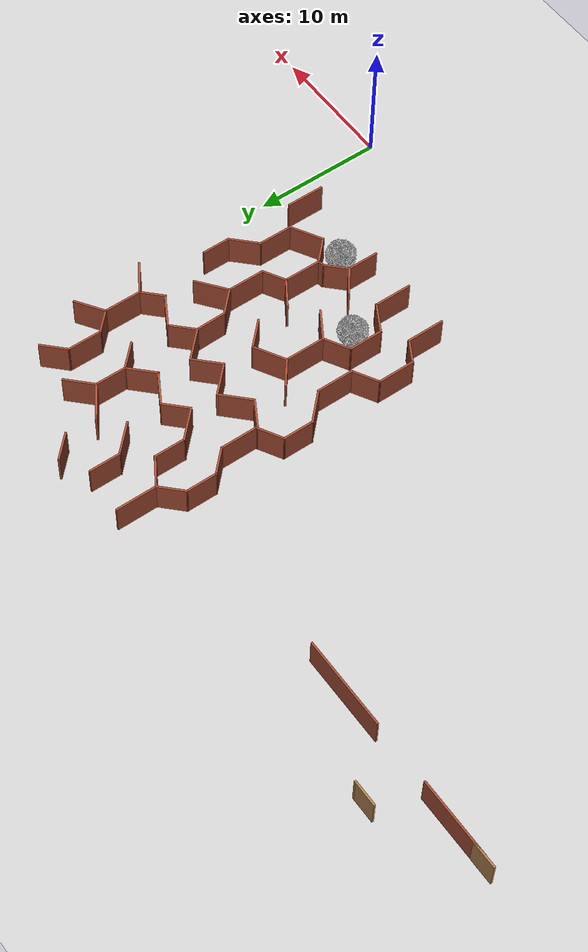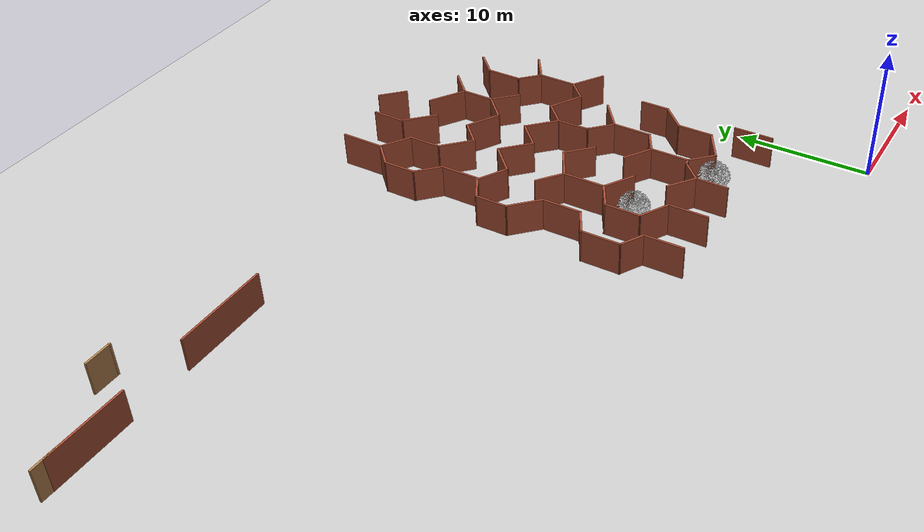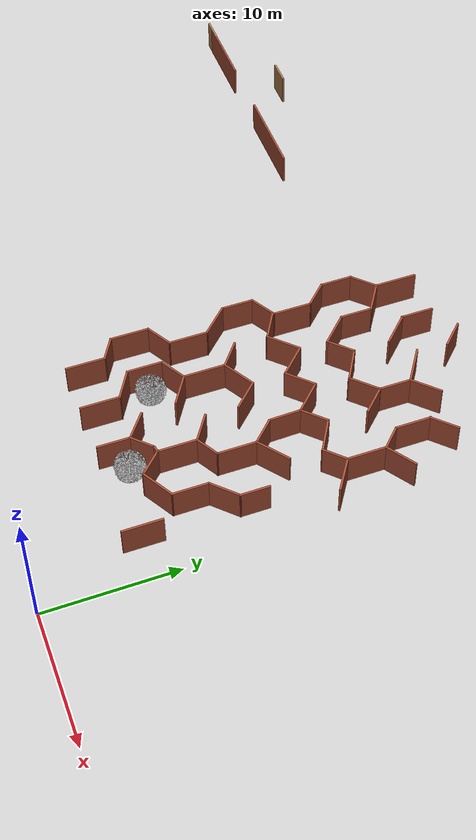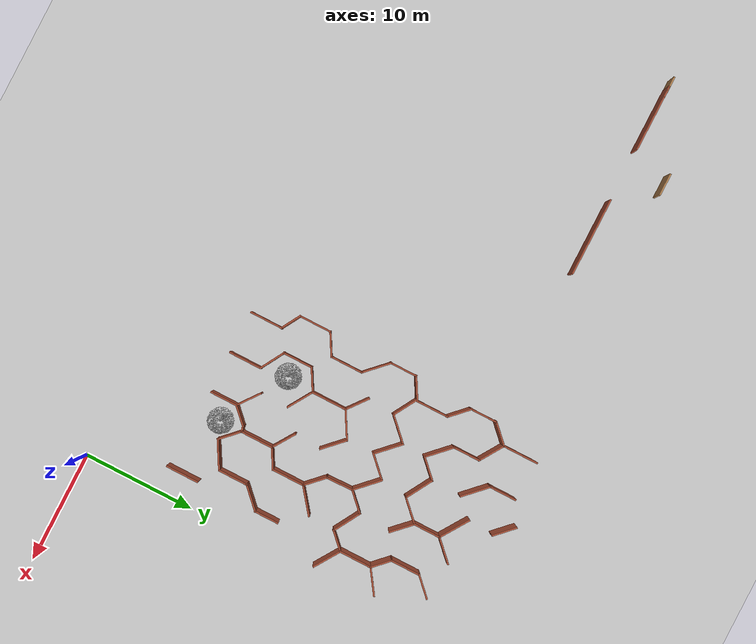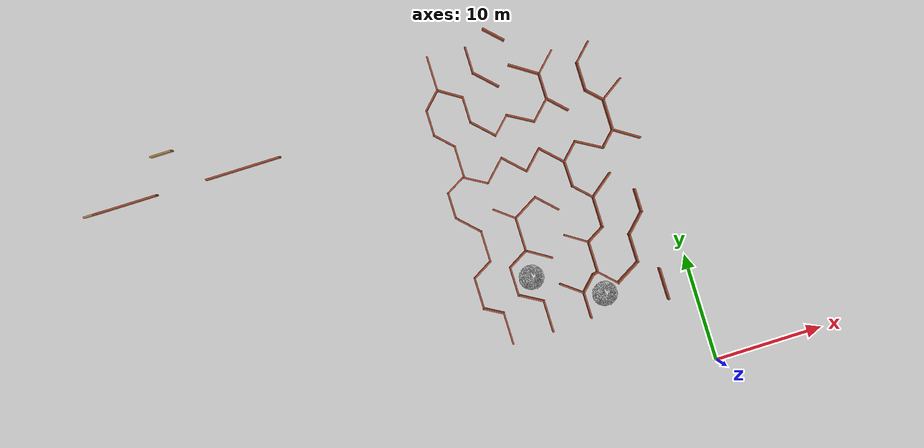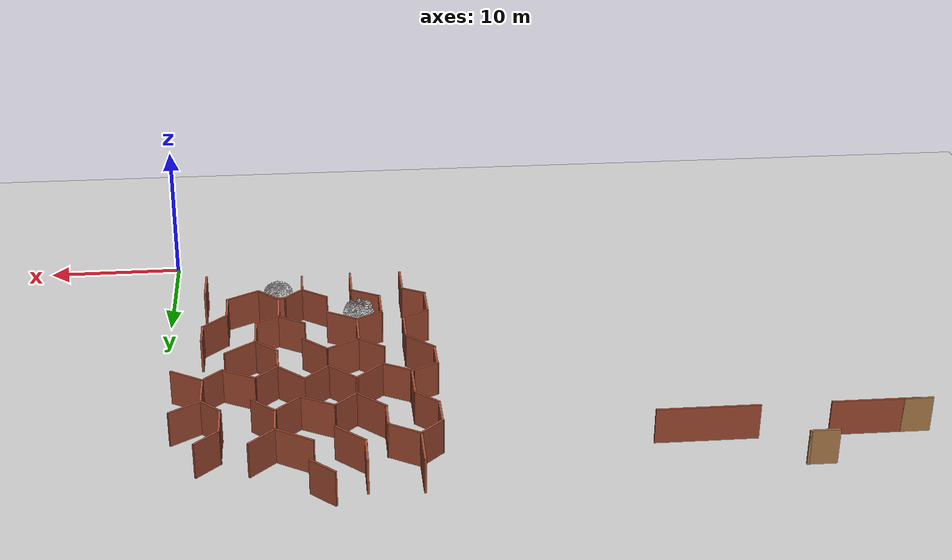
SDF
<sdf version="1.6">
 <world name="default">
  <model name="maze_rect_3">
   <pose>4e-06 -9.9e-05 0 0 -0 1.57001</pose>
   <link name="Wall_100">
    <collision name="Wall_100_Collision">
     <geometry><box><size>3 0.15 2.5</size></box></geometry>
     <pose>0 0 1.25 0 -0 0</pose>
    </collision>
    <visual name="Wall_100_Visual">
     <pose>0 0 1.25 0 -0 0</pose>
     <geometry><box><size>3 0.15 2.5</size></box></geometry>
     <material>
      <script><uri>file://media/materials/scripts/gazebo.material</uri><name>Gazebo/Bricks</name></script>
      <ambient>1 1 1 1</ambient>
     </material>
     <meta><layer>0</layer></meta>
    </visual>
    <pose>8.41531 17.2964 0 0 -0 0</pose>
   </link>
   <link name="Wall_101">
    <collision name="Wall_101_Collision">
     <geometry><box><size>2 0.15 2.5</size></box></geometry>
     <pose>0 0 1.25 0 -0 0</pose>
    </collision>
    <visual name="Wall_101_Visual">
     <pose>0 0 1.25 0 -0 0</pose>
     <geometry><box><size>2 0.15 2.5</size></box></geometry>
     <material>
      <script><uri>file://media/materials/scripts/gazebo.material</uri><name>Gazebo/Bricks</name></script>
      <ambient>1 1 1 1</ambient>
     </material>
     <meta><layer>0</layer></meta>
    </visual>
    <pose>10.3028 18.0975 0 0 -0 1.0472</pose>
   </link>
   <link name="Wall_102">
    <collision name="Wall_102_Collision">
     <geometry><box><size>3 0.15 2.5</size></box></geometry>
     <pose>0 0 1.25 0 -0 0</pose>
    </collision>
    <visual name="Wall_102_Visual">
     <pose>0 0 1.25 0 -0 0</pose>
     <geometry><box><size>3 0.15 2.5</size></box></geometry>
     <material>
      <script><uri>file://media/materials/scripts/gazebo.material</uri><name>Gazebo/Bricks</name></script>
      <ambient>1 1 1 1</ambient>
     </material>
     <meta><layer>0</layer></meta>
    </visual>
    <pose>12.1903 18.8985 0 0 -0 0</pose>
   </link>
   <link name="Wall_103">
    <collision name="Wall_103_Collision">
     <geometry><box><size>2.25 0.15 2.5</size></box></geometry>
     <pose>0 0 1.25 0 -0 0</pose>
    </collision>
    <visual name="Wall_103_Visual">
     <pose>0 0 1.25 0 -0 0</pose>
     <geometry><box><size>2.25 0.15 2.5</size></box></geometry>
     <material>
      <script><uri>file://media/materials/scripts/gazebo.material</uri><name>Gazebo/Bricks</name></script>
      <ambient>1 1 1 1</ambient>
     </material>
     <meta><layer>0</layer></meta>
    </visual>
    <pose>14.1403 17.9892 0 0 -0 -1.0472</pose>
   </link>
   <link name="Wall_104">
    <collision name="Wall_104_Collision">
     <geometry><box><size>3 0.15 2.5</size></box></geometry>
     <pose>0 0 1.25 0 -0 0</pose>
    </collision>
    <visual name="Wall_104_Visual">
     <pose>0 0 1.25 0 -0 0</pose>
     <geometry><box><size>3 0.15 2.5</size></box></geometry>
     <material>
      <script><uri>file://media/materials/scripts/gazebo.material</uri><name>Gazebo/Bricks</name></script>
      <ambient>1 1 1 1</ambient>
     </material>
     <meta><layer>0</layer></meta>
    </visual>
    <pose>16.0903 17.0799 0 0 -0 0</pose>
   </link>
   <link name="Wall_105">
    <collision name="Wall_105_Collision">
     <geometry><box><size>2.75 0.15 2.5</size></box></geometry>
     <pose>0 0 1.25 0 -0 0</pose>
    </collision>
    <visual name="Wall_105_Visual">
     <pose>0 0 1.25 0 -0 0</pose>
     <geometry><box><size>2.75 0.15 2.5</size></box></geometry>
     <material>
      <script><uri>file://media/materials/scripts/gazebo.material</uri><name>Gazebo/Bricks</name></script>
      <ambient>1 1 1 1</ambient>
     </material>
     <meta><layer>0</layer></meta>
    </visual>
    <pose>18.4346 17.9991 0 0 -0 0.785398</pose>
   </link>
   <link name="Wall_106">
    <collision name="Wall_106_Collision">
     <geometry><box><size>2.5 0.15 2.5</size></box></geometry>
     <pose>0 0 1.25 0 -0 0</pose>
    </collision>
    <visual name="Wall_106_Visual">
     <pose>0 0 1.25 0 -0 0</pose>
     <geometry><box><size>2.5 0.15 2.5</size></box></geometry>
     <material>
      <script><uri>file://media/materials/scripts/gazebo.material</uri><name>Gazebo/Bricks</name></script>
      <ambient>1 1 1 1</ambient>
     </material>
     <meta><layer>0</layer></meta>
    </visual>
    <pose>20.5288 18.9183 0 0 -0 0</pose>
   </link>
   <link name="Wall_107">
    <collision name="Wall_107_Collision">
     <geometry><box><size>2.25 0.15 2.5</size></box></geometry>
     <pose>0 0 1.25 0 -0 0</pose>
    </collision>
    <visual name="Wall_107_Visual">
     <pose>0 0 1.25 0 -0 0</pose>
     <geometry><box><size>2.25 0.15 2.5</size></box></geometry>
     <material>
      <script><uri>file://media/materials/scripts/gazebo.material</uri><name>Gazebo/Bricks</name></script>
      <ambient>1 1 1 1</ambient>
     </material>
     <meta><layer>0</layer></meta>
    </visual>
    <pose>22.2288 18.009 0 0 -0 -1.0472</pose>
   </link>
   <link name="Wall_108">
    <collision name="Wall_108_Collision">
     <geometry><box><size>3 0.15 2.5</size></box></geometry>
     <pose>0 0 1.25 0 -0 0</pose>
    </collision>
    <visual name="Wall_108_Visual">
     <pose>0 0 1.25 0 -0 0</pose>
     <geometry><box><size>3 0.15 2.5</size></box></geometry>
     <material>
      <script><uri>file://media/materials/scripts/gazebo.material</uri><name>Gazebo/Bricks</name></script>
      <ambient>1 1 1 1</ambient>
     </material>
     <meta><layer>0</layer></meta>
    </visual>
    <pose>24.1788 17.0997 0 0 -0 0</pose>
   </link>
   <link name="Wall_109">
    <collision name="Wall_109_Collision">
     <geometry><box><size>2.25 0.15 2.5</size></box></geometry>
     <pose>0 0 1.25 0 -0 0</pose>
    </collision>
    <visual name="Wall_109_Visual">
     <pose>0 0 1.25 0 -0 0</pose>
     <geometry><box><size>2.25 0.15 2.5</size></box></geometry>
     <material>
      <script><uri>file://media/materials/scripts/gazebo.material</uri><name>Gazebo/Bricks</name></script>
      <ambient>1 1 1 1</ambient>
     </material>
     <meta><layer>0</layer></meta>
    </visual>
    <pose>26.3463 17.8422 0 0 -0 0.785398</pose>
   </link>
   <link name="Wall_110">
    <collision name="Wall_110_Collision">
     <geometry><box><size>2.5 0.15 2.5</size></box></geometry>
     <pose>0 0 1.25 0 -0 0</pose>
    </collision>
    <visual name="Wall_110_Visual">
     <pose>0 0 1.25 0 -0 0</pose>
     <geometry><box><size>2.5 0.15 2.5</size></box></geometry>
     <material>
      <script><uri>file://media/materials/scripts/gazebo.material</uri><name>Gazebo/Bricks</name></script>
      <ambient>1 1 1 1</ambient>
     </material>
     <meta><layer>0</layer></meta>
    </visual>
    <pose>28.2637 18.5846 0 0 -0 0</pose>
   </link>
   <link name="Wall_111">
    <collision name="Wall_111_Collision">
     <geometry><box><size>2.25 0.15 2.5</size></box></geometry>
     <pose>0 0 1.25 0 -0 0</pose>
    </collision>
    <visual name="Wall_111_Visual">
     <pose>0 0 1.25 0 -0 0</pose>
     <geometry><box><size>2.25 0.15 2.5</size></box></geometry>
     <material>
      <script><uri>file://media/materials/scripts/gazebo.material</uri><name>Gazebo/Bricks</name></script>
      <ambient>1 1 1 1</ambient>
     </material>
     <meta><layer>0</layer></meta>
    </visual>
    <pose>30.1812 17.8422 0 0 -0 -0.785398</pose>
   </link>
   <link name="Wall_112">
    <collision name="Wall_112_Collision">
     <geometry><box><size>3.25 0.15 2.5</size></box></geometry>
     <pose>0 0 1.25 0 -0 0</pose>
    </collision>
    <visual name="Wall_112_Visual">
     <pose>0 0 1.25 0 -0 0</pose>
     <geometry><box><size>3.25 0.15 2.5</size></box></geometry>
     <material>
      <script><uri>file://media/materials/scripts/gazebo.material</uri><name>Gazebo/Bricks</name></script>
      <ambient>1 1 1 1</ambient>
     </material>
     <meta><layer>0</layer></meta>
    </visual>
    <pose>32.4736 17.0997 0 0 -0 0</pose>
   </link>
   <link name="Wall_324">
    <collision name="Wall_324_Collision">
     <geometry><box><size>2.5 0.15 2.5</size></box></geometry>
     <pose>0 0 1.25 0 -0 0</pose>
    </collision>
    <visual name="Wall_324_Visual">
     <pose>0 0 1.25 0 -0 0</pose>
     <geometry><box><size>2.5 0.15 2.5</size></box></geometry>
     <material>
      <script><uri>file://media/materials/scripts/gazebo.material</uri><name>Gazebo/Bricks</name></script>
      <ambient>1 1 1 1</ambient>
     </material>
     <meta><layer>0</layer></meta>
    </visual>
    <pose>30.4716 7.01358 0 0 -0 2.35619</pose>
   </link>
   <link name="Wall_325">
    <collision name="Wall_325_Collision">
     <geometry><box><size>2.5 0.15 2.5</size></box></geometry>
     <pose>0 0 1.25 0 -0 0</pose>
    </collision>
    <visual name="Wall_325_Visual">
     <pose>0 0 1.25 0 -0 0</pose>
     <geometry><box><size>2.5 0.15 2.5</size></box></geometry>
     <material>
      <script><uri>file://media/materials/scripts/gazebo.material</uri><name>Gazebo/Bricks</name></script>
      <ambient>1 1 1 1</ambient>
     </material>
     <meta><layer>0</layer></meta>
    </visual>
    <pose>28.4657 7.84443 0 0 -0 3.14159</pose>
   </link>
   <link name="Wall_326">
    <collision name="Wall_326_Collision">
     <geometry><box><size>2.5 0.15 2.5</size></box></geometry>
     <pose>0 0 1.25 0 -0 0</pose>
    </collision>
    <visual name="Wall_326_Visual">
     <pose>0 0 1.25 0 -0 0</pose>
     <geometry><box><size>2.5 0.15 2.5</size></box></geometry>
     <material>
      <script><uri>file://media/materials/scripts/gazebo.material</uri><name>Gazebo/Bricks</name></script>
      <ambient>1 1 1 1</ambient>
     </material>
     <meta><layer>0</layer></meta>
    </visual>
    <pose>26.4599 8.67528 0 0 -0 2.35619</pose>
   </link>
   <link name="Wall_327">
    <collision name="Wall_327_Collision">
     <geometry><box><size>2.75 0.15 2.5</size></box></geometry>
     <pose>0 0 1.25 0 -0 0</pose>
    </collision>
    <visual name="Wall_327_Visual">
     <pose>0 0 1.25 0 -0 0</pose>
     <geometry><box><size>2.75 0.15 2.5</size></box></geometry>
     <material>
      <script><uri>file://media/materials/scripts/gazebo.material</uri><name>Gazebo/Bricks</name></script>
      <ambient>1 1 1 1</ambient>
     </material>
     <meta><layer>0</layer></meta>
    </visual>
    <pose>26.279 10.632 0 0 -0 1.0472</pose>
   </link>
   <link name="Wall_328">
    <collision name="Wall_328_Collision">
     <geometry><box><size>2.25 0.15 2.5</size></box></geometry>
     <pose>0 0 1.25 0 -0 0</pose>
    </collision>
    <visual name="Wall_328_Visual">
     <pose>0 0 1.25 0 -0 0</pose>
     <geometry><box><size>2.25 0.15 2.5</size></box></geometry>
     <material>
      <script><uri>file://media/materials/scripts/gazebo.material</uri><name>Gazebo/Bricks</name></script>
      <ambient>1 1 1 1</ambient>
     </material>
     <meta><layer>0</layer></meta>
    </visual>
    <pose>26.1866 12.5003 0 0 -0 2.35619</pose>
   </link>
   <link name="Wall_329">
    <collision name="Wall_329_Collision">
     <geometry><box><size>2.75 0.15 2.5</size></box></geometry>
     <pose>0 0 1.25 0 -0 0</pose>
    </collision>
    <visual name="Wall_329_Visual">
     <pose>0 0 1.25 0 -0 0</pose>
     <geometry><box><size>2.75 0.15 2.5</size></box></geometry>
     <material>
      <script><uri>file://media/materials/scripts/gazebo.material</uri><name>Gazebo/Bricks</name></script>
      <ambient>1 1 1 1</ambient>
     </material>
     <meta><layer>0</layer></meta>
    </visual>
    <pose>26.3633 14.162 0 0 -0 0.785398</pose>
   </link>
   <link name="Wall_330">
    <collision name="Wall_330_Collision">
     <geometry><box><size>2.5 0.15 2.5</size></box></geometry>
     <pose>0 0 1.25 0 -0 0</pose>
    </collision>
    <visual name="Wall_330_Visual">
     <pose>0 0 1.25 0 -0 0</pose>
     <geometry><box><size>2.5 0.15 2.5</size></box></geometry>
     <material>
      <script><uri>file://media/materials/scripts/gazebo.material</uri><name>Gazebo/Bricks</name></script>
      <ambient>1 1 1 1</ambient>
     </material>
     <meta><layer>0</layer></meta>
    </visual>
    <pose>28.4576 15.0812 0 0 -0 0</pose>
   </link>
   <link name="Wall_331">
    <collision name="Wall_331_Collision">
     <geometry><box><size>2.54607 0.15 2.5</size></box></geometry>
     <pose>0 0 1.25 0 -0 0</pose>
    </collision>
    <visual name="Wall_331_Visual">
     <pose>0 0 1.25 0 -0 0</pose>
     <geometry><box><size>2.54607 0.15 2.5</size></box></geometry>
     <material>
      <script><uri>file://media/materials/scripts/gazebo.material</uri><name>Gazebo/Bricks</name></script>
      <ambient>1 1 1 1</ambient>
     </material>
     <meta><layer>0</layer></meta>
    </visual>
    <pose>30.2781 16.0904 0 0 -0 1.00176</pose>
   </link>
   <link name="Wall_333">
    <collision name="Wall_333_Collision">
     <geometry><box><size>3.00629 0.15 2.5</size></box></geometry>
     <pose>0 0 1.25 0 -0 0</pose>
    </collision>
    <visual name="Wall_333_Visual">
     <pose>0 0 1.25 0 -0 0</pose>
     <geometry><box><size>3.00629 0.15 2.5</size></box></geometry>
     <material>
      <script><uri>file://media/materials/scripts/gazebo.material</uri><name>Gazebo/Bricks</name></script>
      <ambient>1 1 1 1</ambient>
     </material>
     <meta><layer>0</layer></meta>
    </visual>
    <pose>30.4256 9.03758 0 0 -0 -2.15263</pose>
   </link>
   <link name="Wall_335">
    <collision name="Wall_335_Collision">
     <geometry><box><size>2.75 0.15 2.5</size></box></geometry>
     <pose>0 0 1.25 0 -0 0</pose>
    </collision>
    <visual name="Wall_335_Visual">
     <pose>0 0 1.25 0 -0 0</pose>
     <geometry><box><size>2.75 0.15 2.5</size></box></geometry>
     <material>
      <script><uri>file://media/materials/scripts/gazebo.material</uri><name>Gazebo/Bricks</name></script>
      <ambient>1 1 1 1</ambient>
     </material>
     <meta><layer>0</layer></meta>
    </visual>
    <pose>30.5657 12.622 0 0 -0 0.785398</pose>
   </link>
   <link name="Wall_336">
    <collision name="Wall_336_Collision">
     <geometry><box><size>2.5 0.15 2.5</size></box></geometry>
     <pose>0 0 1.25 0 -0 0</pose>
    </collision>
    <visual name="Wall_336_Visual">
     <pose>0 0 1.25 0 -0 0</pose>
     <geometry><box><size>2.5 0.15 2.5</size></box></geometry>
     <material>
      <script><uri>file://media/materials/scripts/gazebo.material</uri><name>Gazebo/Bricks</name></script>
      <ambient>1 1 1 1</ambient>
     </material>
     <meta><layer>0</layer></meta>
    </visual>
    <pose>32.6599 13.5412 0 0 -0 0</pose>
   </link>
   <link name="Wall_338">
    <collision name="Wall_338_Collision">
     <geometry><box><size>2.25 0.15 2.5</size></box></geometry>
     <pose>0 0 1.25 0 -0 0</pose>
    </collision>
    <visual name="Wall_338_Visual">
     <pose>0 0 1.25 0 -0 0</pose>
     <geometry><box><size>2.25 0.15 2.5</size></box></geometry>
     <material>
      <script><uri>file://media/materials/scripts/gazebo.material</uri><name>Gazebo/Bricks</name></script>
      <ambient>1 1 1 1</ambient>
     </material>
     <meta><layer>0</layer></meta>
    </visual>
    <pose>34.2674 10.7636 0 0 -0 -2.35619</pose>
   </link>
   <link name="Wall_342">
    <collision name="Wall_342_Collision">
     <geometry><box><size>2.25 0.15 2.5</size></box></geometry>
     <pose>0 0 1.25 0 -0 0</pose>
    </collision>
    <visual name="Wall_342_Visual">
     <pose>0 0 1.25 0 -0 0</pose>
     <geometry><box><size>2.25 0.15 2.5</size></box></geometry>
     <material>
      <script><uri>file://media/materials/scripts/gazebo.material</uri><name>Gazebo/Bricks</name></script>
      <ambient>1 1 1 1</ambient>
     </material>
     <meta><layer>0</layer></meta>
    </visual>
    <pose>30.33 3.52119 0 0 -0 2.35619</pose>
   </link>
   <link name="Wall_343">
    <collision name="Wall_343_Collision">
     <geometry><box><size>2.75 0.15 2.5</size></box></geometry>
     <pose>0 0 1.25 0 -0 0</pose>
    </collision>
    <visual name="Wall_343_Visual">
     <pose>0 0 1.25 0 -0 0</pose>
     <geometry><box><size>2.75 0.15 2.5</size></box></geometry>
     <material>
      <script><uri>file://media/materials/scripts/gazebo.material</uri><name>Gazebo/Bricks</name></script>
      <ambient>1 1 1 1</ambient>
     </material>
     <meta><layer>0</layer></meta>
    </visual>
    <pose>28.2875 4.26365 0 0 -0 3.14159</pose>
   </link>
   <link name="Wall_344">
    <collision name="Wall_344_Collision">
     <geometry><box><size>2 0.15 2.5</size></box></geometry>
     <pose>0 0 1.25 0 -0 0</pose>
    </collision>
    <visual name="Wall_344_Visual">
     <pose>0 0 1.25 0 -0 0</pose>
     <geometry><box><size>2 0.15 2.5</size></box></geometry>
     <material>
      <script><uri>file://media/materials/scripts/gazebo.material</uri><name>Gazebo/Bricks</name></script>
      <ambient>1 1 1 1</ambient>
     </material>
     <meta><layer>0</layer></meta>
    </visual>
    <pose>26.3334 3.60958 0 0 -0 -2.35619</pose>
   </link>
   <link name="Wall_345">
    <collision name="Wall_345_Collision">
     <geometry><box><size>3 0.15 2.5</size></box></geometry>
     <pose>0 0 1.25 0 -0 0</pose>
    </collision>
    <visual name="Wall_345_Visual">
     <pose>0 0 1.25 0 -0 0</pose>
     <geometry><box><size>3 0.15 2.5</size></box></geometry>
     <material>
      <script><uri>file://media/materials/scripts/gazebo.material</uri><name>Gazebo/Bricks</name></script>
      <ambient>1 1 1 1</ambient>
     </material>
     <meta><layer>0</layer></meta>
    </visual>
    <pose>24.2544 2.95551 0 0 -0 3.14159</pose>
   </link>
   <link name="Wall_346">
    <collision name="Wall_346_Collision">
     <geometry><box><size>2 0.15 2.5</size></box></geometry>
     <pose>0 0 1.25 0 -0 0</pose>
    </collision>
    <visual name="Wall_346_Visual">
     <pose>0 0 1.25 0 -0 0</pose>
     <geometry><box><size>2 0.15 2.5</size></box></geometry>
     <material>
      <script><uri>file://media/materials/scripts/gazebo.material</uri><name>Gazebo/Bricks</name></script>
      <ambient>1 1 1 1</ambient>
     </material>
     <meta><layer>0</layer></meta>
    </visual>
    <pose>22.1753 3.60958 0 0 -0 2.35619</pose>
   </link>
   <link name="Wall_347">
    <collision name="Wall_347_Collision">
     <geometry><box><size>2.75 0.15 2.5</size></box></geometry>
     <pose>0 0 1.25 0 -0 0</pose>
    </collision>
    <visual name="Wall_347_Visual">
     <pose>0 0 1.25 0 -0 0</pose>
     <geometry><box><size>2.75 0.15 2.5</size></box></geometry>
     <material>
      <script><uri>file://media/materials/scripts/gazebo.material</uri><name>Gazebo/Bricks</name></script>
      <ambient>1 1 1 1</ambient>
     </material>
     <meta><layer>0</layer></meta>
    </visual>
    <pose>22.1712 5.38949 0 0 -0 1.0472</pose>
   </link>
   <link name="Wall_348">
    <collision name="Wall_348_Collision">
     <geometry><box><size>2.25 0.15 2.5</size></box></geometry>
     <pose>0 0 1.25 0 -0 0</pose>
    </collision>
    <visual name="Wall_348_Visual">
     <pose>0 0 1.25 0 -0 0</pose>
     <geometry><box><size>2.25 0.15 2.5</size></box></geometry>
     <material>
      <script><uri>file://media/materials/scripts/gazebo.material</uri><name>Gazebo/Bricks</name></script>
      <ambient>1 1 1 1</ambient>
     </material>
     <meta><layer>0</layer></meta>
    </visual>
    <pose>22.0787 7.25778 0 0 -0 2.35619</pose>
   </link>
   <link name="Wall_349">
    <collision name="Wall_349_Collision">
     <geometry><box><size>2.75 0.15 2.5</size></box></geometry>
     <pose>0 0 1.25 0 -0 0</pose>
    </collision>
    <visual name="Wall_349_Visual">
     <pose>0 0 1.25 0 -0 0</pose>
     <geometry><box><size>2.75 0.15 2.5</size></box></geometry>
     <material>
      <script><uri>file://media/materials/scripts/gazebo.material</uri><name>Gazebo/Bricks</name></script>
      <ambient>1 1 1 1</ambient>
     </material>
     <meta><layer>0</layer></meta>
    </visual>
    <pose>22.2555 8.91948 0 0 -0 0.785398</pose>
   </link>
   <link name="Wall_350">
    <collision name="Wall_350_Collision">
     <geometry><box><size>2.5 0.15 2.5</size></box></geometry>
     <pose>0 0 1.25 0 -0 0</pose>
    </collision>
    <visual name="Wall_350_Visual">
     <pose>0 0 1.25 0 -0 0</pose>
     <geometry><box><size>2.5 0.15 2.5</size></box></geometry>
     <material>
      <script><uri>file://media/materials/scripts/gazebo.material</uri><name>Gazebo/Bricks</name></script>
      <ambient>1 1 1 1</ambient>
     </material>
     <meta><layer>0</layer></meta>
    </visual>
    <pose>22.3439 10.6696 0 0 -0 2.35619</pose>
   </link>
   <link name="Wall_351">
    <collision name="Wall_351_Collision">
     <geometry><box><size>2.75 0.15 2.5</size></box></geometry>
     <pose>0 0 1.25 0 -0 0</pose>
    </collision>
    <visual name="Wall_351_Visual">
     <pose>0 0 1.25 0 -0 0</pose>
     <geometry><box><size>2.75 0.15 2.5</size></box></geometry>
     <material>
      <script><uri>file://media/materials/scripts/gazebo.material</uri><name>Gazebo/Bricks</name></script>
      <ambient>1 1 1 1</ambient>
     </material>
     <meta><layer>0</layer></meta>
    </visual>
    <pose>22.4323 12.4197 0 0 -0 0.785398</pose>
   </link>
   <link name="Wall_352">
    <collision name="Wall_352_Collision">
     <geometry><box><size>2.75 0.15 2.5</size></box></geometry>
     <pose>0 0 1.25 0 -0 0</pose>
    </collision>
    <visual name="Wall_352_Visual">
     <pose>0 0 1.25 0 -0 0</pose>
     <geometry><box><size>2.75 0.15 2.5</size></box></geometry>
     <material>
      <script><uri>file://media/materials/scripts/gazebo.material</uri><name>Gazebo/Bricks</name></script>
      <ambient>1 1 1 1</ambient>
     </material>
     <meta><layer>0</layer></meta>
    </visual>
    <pose>22.4323 14.2581 0 0 -0 2.35619</pose>
   </link>
   <link name="Wall_354">
    <collision name="Wall_354_Collision">
     <geometry><box><size>2.5 0.15 2.5</size></box></geometry>
     <pose>0 0 1.25 0 -0 0</pose>
    </collision>
    <visual name="Wall_354_Visual">
     <pose>0 0 1.25 0 -0 0</pose>
     <geometry><box><size>2.5 0.15 2.5</size></box></geometry>
     <material>
      <script><uri>file://media/materials/scripts/gazebo.material</uri><name>Gazebo/Bricks</name></script>
      <ambient>1 1 1 1</ambient>
     </material>
     <meta><layer>0</layer></meta>
    </visual>
    <pose>22.1006 16.195 0 0 -0 1.0472</pose>
   </link>
   <link name="Wall_356">
    <collision name="Wall_356_Collision">
     <geometry><box><size>2.55429 0.15 2.5</size></box></geometry>
     <pose>0 0 1.25 0 -0 0</pose>
    </collision>
    <visual name="Wall_356_Visual">
     <pose>0 0 1.25 0 -0 0</pose>
     <geometry><box><size>2.55429 0.15 2.5</size></box></geometry>
     <material>
      <script><uri>file://media/materials/scripts/gazebo.material</uri><name>Gazebo/Bricks</name></script>
      <ambient>1 1 1 1</ambient>
     </material>
     <meta><layer>0</layer></meta>
    </visual>
    <pose>26.3574 1.96284 0 0 -0 2.17007</pose>
   </link>
   <link name="Wall_360">
    <collision name="Wall_360_Collision">
     <geometry><box><size>2.71498 0.15 2.5</size></box></geometry>
     <pose>0 0 1.25 0 -0 0</pose>
    </collision>
    <visual name="Wall_360_Visual">
     <pose>0 0 1.25 0 -0 0</pose>
     <geometry><box><size>2.71498 0.15 2.5</size></box></geometry>
     <material>
      <script><uri>file://media/materials/scripts/gazebo.material</uri><name>Gazebo/Bricks</name></script>
      <ambient>1 1 1 1</ambient>
     </material>
     <meta><layer>0</layer></meta>
    </visual>
    <pose>22.1295 1.88083 0 0 -0 0.993536</pose>
   </link>
   <link name="Wall_365">
    <collision name="Wall_365_Collision">
     <geometry><box><size>2.25 0.15 2.5</size></box></geometry>
     <pose>0 0 1.25 0 -0 0</pose>
    </collision>
    <visual name="Wall_365_Visual">
     <pose>0 0 1.25 0 -0 0</pose>
     <geometry><box><size>2.25 0.15 2.5</size></box></geometry>
     <material>
      <script><uri>file://media/materials/scripts/gazebo.material</uri><name>Gazebo/Bricks</name></script>
      <ambient>1 1 1 1</ambient>
     </material>
     <meta><layer>0</layer></meta>
    </visual>
    <pose>16.0066 2.653 0 0 -0 3.14159</pose>
   </link>
   <link name="Wall_366">
    <collision name="Wall_366_Collision">
     <geometry><box><size>2.5 0.15 2.5</size></box></geometry>
     <pose>0 0 1.25 0 -0 0</pose>
    </collision>
    <visual name="Wall_366_Visual">
     <pose>0 0 1.25 0 -0 0</pose>
     <geometry><box><size>2.5 0.15 2.5</size></box></geometry>
     <material>
      <script><uri>file://media/materials/scripts/gazebo.material</uri><name>Gazebo/Bricks</name></script>
      <ambient>1 1 1 1</ambient>
     </material>
     <meta><layer>0</layer></meta>
    </visual>
    <pose>14.1257 3.48385 0 0 -0 2.35619</pose>
   </link>
   <link name="Wall_367">
    <collision name="Wall_367_Collision">
     <geometry><box><size>2.75 0.15 2.5</size></box></geometry>
     <pose>0 0 1.25 0 -0 0</pose>
    </collision>
    <visual name="Wall_367_Visual">
     <pose>0 0 1.25 0 -0 0</pose>
     <geometry><box><size>2.75 0.15 2.5</size></box></geometry>
     <material>
      <script><uri>file://media/materials/scripts/gazebo.material</uri><name>Gazebo/Bricks</name></script>
      <ambient>1 1 1 1</ambient>
     </material>
     <meta><layer>0</layer></meta>
    </visual>
    <pose>11.9949 4.3147 0 0 -0 3.14159</pose>
   </link>
   <link name="Wall_368">
    <collision name="Wall_368_Collision">
     <geometry><box><size>2.75 0.15 2.5</size></box></geometry>
     <pose>0 0 1.25 0 -0 0</pose>
    </collision>
    <visual name="Wall_368_Visual">
     <pose>0 0 1.25 0 -0 0</pose>
     <geometry><box><size>2.75 0.15 2.5</size></box></geometry>
     <material>
      <script><uri>file://media/materials/scripts/gazebo.material</uri><name>Gazebo/Bricks</name></script>
      <ambient>1 1 1 1</ambient>
     </material>
     <meta><layer>0</layer></meta>
    </visual>
    <pose>10.0449 5.44053 0 0 -0 2.0944</pose>
   </link>
   <link name="Wall_369">
    <collision name="Wall_369_Collision">
     <geometry><box><size>2.25 0.15 2.5</size></box></geometry>
     <pose>0 0 1.25 0 -0 0</pose>
    </collision>
    <visual name="Wall_369_Visual">
     <pose>0 0 1.25 0 -0 0</pose>
     <geometry><box><size>2.25 0.15 2.5</size></box></geometry>
     <material>
      <script><uri>file://media/materials/scripts/gazebo.material</uri><name>Gazebo/Bricks</name></script>
      <ambient>1 1 1 1</ambient>
     </material>
     <meta><layer>0</layer></meta>
    </visual>
    <pose>10.1373 7.30882 0 0 -0 0.785398</pose>
   </link>
   <link name="Wall_370">
    <collision name="Wall_370_Collision">
     <geometry><box><size>3 0.15 2.5</size></box></geometry>
     <pose>0 0 1.25 0 -0 0</pose>
    </collision>
    <visual name="Wall_370_Visual">
     <pose>0 0 1.25 0 -0 0</pose>
     <geometry><box><size>3 0.15 2.5</size></box></geometry>
     <material>
      <script><uri>file://media/materials/scripts/gazebo.material</uri><name>Gazebo/Bricks</name></script>
      <ambient>1 1 1 1</ambient>
     </material>
     <meta><layer>0</layer></meta>
    </visual>
    <pose>12.3048 8.05129 0 0 -0 0</pose>
   </link>
   <link name="Wall_371">
    <collision name="Wall_371_Collision">
     <geometry><box><size>2 0.15 2.5</size></box></geometry>
     <pose>0 0 1.25 0 -0 0</pose>
    </collision>
    <visual name="Wall_371_Visual">
     <pose>0 0 1.25 0 -0 0</pose>
     <geometry><box><size>2 0.15 2.5</size></box></geometry>
     <material>
      <script><uri>file://media/materials/scripts/gazebo.material</uri><name>Gazebo/Bricks</name></script>
      <ambient>1 1 1 1</ambient>
     </material>
     <meta><layer>0</layer></meta>
    </visual>
    <pose>14.1923 7.25021 0 0 -0 -1.0472</pose>
   </link>
   <link name="Wall_372">
    <collision name="Wall_372_Collision">
     <geometry><box><size>3 0.15 2.5</size></box></geometry>
     <pose>0 0 1.25 0 -0 0</pose>
    </collision>
    <visual name="Wall_372_Visual">
     <pose>0 0 1.25 0 -0 0</pose>
     <geometry><box><size>3 0.15 2.5</size></box></geometry>
     <material>
      <script><uri>file://media/materials/scripts/gazebo.material</uri><name>Gazebo/Bricks</name></script>
      <ambient>1 1 1 1</ambient>
     </material>
     <meta><layer>0</layer></meta>
    </visual>
    <pose>16.0798 6.44914 0 0 -0 0</pose>
   </link>
   <link name="Wall_373">
    <collision name="Wall_373_Collision">
     <geometry><box><size>2.25 0.15 2.5</size></box></geometry>
     <pose>0 0 1.25 0 -0 0</pose>
    </collision>
    <visual name="Wall_373_Visual">
     <pose>0 0 1.25 0 -0 0</pose>
     <geometry><box><size>2.25 0.15 2.5</size></box></geometry>
     <material>
      <script><uri>file://media/materials/scripts/gazebo.material</uri><name>Gazebo/Bricks</name></script>
      <ambient>1 1 1 1</ambient>
     </material>
     <meta><layer>0</layer></meta>
    </visual>
    <pose>18.2472 7.1916 0 0 -0 0.785398</pose>
   </link>
   <link name="Wall_374">
    <collision name="Wall_374_Collision">
     <geometry><box><size>2.49751 0.15 2.5</size></box></geometry>
     <pose>0 0 1.25 0 -0 0</pose>
    </collision>
    <visual name="Wall_374_Visual">
     <pose>0 0 1.25 0 -0 0</pose>
     <geometry><box><size>2.49751 0.15 2.5</size></box></geometry>
     <material>
      <script><uri>file://media/materials/scripts/gazebo.material</uri><name>Gazebo/Bricks</name></script>
      <ambient>1 1 1 1</ambient>
     </material>
     <meta><layer>0</layer></meta>
    </visual>
    <pose>20.163 7.96715 0 0 -0 0.028195</pose>
   </link>
   <link name="Wall_376">
    <collision name="Wall_376_Collision">
     <geometry><box><size>2.78161 0.15 2.5</size></box></geometry>
     <pose>0 0 1.25 0 -0 0</pose>
    </collision>
    <visual name="Wall_376_Visual">
     <pose>0 0 1.25 0 -0 0</pose>
     <geometry><box><size>2.78161 0.15 2.5</size></box></geometry>
     <material>
      <script><uri>file://media/materials/scripts/gazebo.material</uri><name>Gazebo/Bricks</name></script>
      <ambient>1 1 1 1</ambient>
     </material>
     <meta><layer>0</layer></meta>
    </visual>
    <pose>18.3158 5.41303 0 0 -0 2.23496</pose>
   </link>
   <link name="Wall_395">
    <collision name="Wall_395_Collision">
     <geometry><box><size>2.33291 0.15 2.5</size></box></geometry>
     <pose>0 0 1.25 0 -0 0</pose>
    </collision>
    <visual name="Wall_395_Visual">
     <pose>0 0 1.25 0 -0 0</pose>
     <geometry><box><size>2.33291 0.15 2.5</size></box></geometry>
     <material>
      <script><uri>file://media/materials/scripts/gazebo.material</uri><name>Gazebo/Bricks</name></script>
      <ambient>1 1 1 1</ambient>
     </material>
     <meta><layer>0</layer></meta>
    </visual>
    <pose>26.5145 7.0771 0 0 -0 0.779649</pose>
   </link>
   <link name="Wall_399">
    <collision name="Wall_399_Collision">
     <geometry><box><size>2.36913 0.15 2.5</size></box></geometry>
     <pose>0 0 1.25 0 -0 0</pose>
    </collision>
    <visual name="Wall_399_Visual">
     <pose>0 0 1.25 0 -0 0</pose>
     <geometry><box><size>2.36913 0.15 2.5</size></box></geometry>
     <material>
      <script><uri>file://media/materials/scripts/gazebo.material</uri><name>Gazebo/Bricks</name></script>
      <ambient>1 1 1 1</ambient>
     </material>
     <meta><layer>0</layer></meta>
    </visual>
    <pose>14.3383 8.97913 0 0 -0 -2.15123</pose>
   </link>
   <link name="Wall_401">
    <collision name="Wall_401_Collision">
     <geometry><box><size>2.5 0.15 2.5</size></box></geometry>
     <pose>0 0 1.25 0 -0 0</pose>
    </collision>
    <visual name="Wall_401_Visual">
     <pose>0 0 1.25 0 -0 0</pose>
     <geometry><box><size>2.5 0.15 2.5</size></box></geometry>
     <material>
      <script><uri>file://media/materials/scripts/gazebo.material</uri><name>Gazebo/Bricks</name></script>
      <ambient>1 1 1 1</ambient>
     </material>
     <meta><layer>0</layer></meta>
    </visual>
    <pose>18.211 10.632 0 0 -0 0.785398</pose>
   </link>
   <link name="Wall_402">
    <collision name="Wall_402_Collision">
     <geometry><box><size>2.75 0.15 2.5</size></box></geometry>
     <pose>0 0 1.25 0 -0 0</pose>
    </collision>
    <visual name="Wall_402_Visual">
     <pose>0 0 1.25 0 -0 0</pose>
     <geometry><box><size>2.75 0.15 2.5</size></box></geometry>
     <material>
      <script><uri>file://media/materials/scripts/gazebo.material</uri><name>Gazebo/Bricks</name></script>
      <ambient>1 1 1 1</ambient>
     </material>
     <meta><layer>0</layer></meta>
    </visual>
    <pose>18.3918 12.5887 0 0 -0 2.0944</pose>
   </link>
   <link name="Wall_403">
    <collision name="Wall_403_Collision">
     <geometry><box><size>3.25 0.15 2.5</size></box></geometry>
     <pose>0 0 1.25 0 -0 0</pose>
    </collision>
    <visual name="Wall_403_Visual">
     <pose>0 0 1.25 0 -0 0</pose>
     <geometry><box><size>3.25 0.15 2.5</size></box></geometry>
     <material>
      <script><uri>file://media/materials/scripts/gazebo.material</uri><name>Gazebo/Bricks</name></script>
      <ambient>1 1 1 1</ambient>
     </material>
     <meta><layer>0</layer></meta>
    </visual>
    <pose>16.1918 13.7145 0 0 -0 3.14159</pose>
   </link>
   <link name="Wall_404">
    <collision name="Wall_404_Collision">
     <geometry><box><size>2.25 0.15 2.5</size></box></geometry>
     <pose>0 0 1.25 0 -0 0</pose>
    </collision>
    <visual name="Wall_404_Visual">
     <pose>0 0 1.25 0 -0 0</pose>
     <geometry><box><size>2.25 0.15 2.5</size></box></geometry>
     <material>
      <script><uri>file://media/materials/scripts/gazebo.material</uri><name>Gazebo/Bricks</name></script>
      <ambient>1 1 1 1</ambient>
     </material>
     <meta><layer>0</layer></meta>
    </visual>
    <pose>14.1168 14.6239 0 0 -0 2.0944</pose>
   </link>
   <link name="Wall_405">
    <collision name="Wall_405_Collision">
     <geometry><box><size>2.75 0.15 2.5</size></box></geometry>
     <pose>0 0 1.25 0 -0 0</pose>
    </collision>
    <visual name="Wall_405_Visual">
     <pose>0 0 1.25 0 -0 0</pose>
     <geometry><box><size>2.75 0.15 2.5</size></box></geometry>
     <material>
      <script><uri>file://media/materials/scripts/gazebo.material</uri><name>Gazebo/Bricks</name></script>
      <ambient>1 1 1 1</ambient>
     </material>
     <meta><layer>0</layer></meta>
    </visual>
    <pose>12.2918 15.5332 0 0 -0 3.14159</pose>
   </link>
   <link name="Wall_406">
    <collision name="Wall_406_Collision">
     <geometry><box><size>2.5 0.15 2.5</size></box></geometry>
     <pose>0 0 1.25 0 -0 0</pose>
    </collision>
    <visual name="Wall_406_Visual">
     <pose>0 0 1.25 0 -0 0</pose>
     <geometry><box><size>2.5 0.15 2.5</size></box></geometry>
     <material>
      <script><uri>file://media/materials/scripts/gazebo.material</uri><name>Gazebo/Bricks</name></script>
      <ambient>1 1 1 1</ambient>
     </material>
     <meta><layer>0</layer></meta>
    </visual>
    <pose>10.4043 14.5156 0 0 -0 -2.0944</pose>
   </link>
   <link name="Wall_407">
    <collision name="Wall_407_Collision">
     <geometry><box><size>3 0.15 2.5</size></box></geometry>
     <pose>0 0 1.25 0 -0 0</pose>
    </collision>
    <visual name="Wall_407_Visual">
     <pose>0 0 1.25 0 -0 0</pose>
     <geometry><box><size>3 0.15 2.5</size></box></geometry>
     <material>
      <script><uri>file://media/materials/scripts/gazebo.material</uri><name>Gazebo/Bricks</name></script>
      <ambient>1 1 1 1</ambient>
     </material>
     <meta><layer>0</layer></meta>
    </visual>
    <pose>8.39183 13.498 0 0 -0 3.14159</pose>
   </link>
   <link name="Wall_418">
    <collision name="Wall_418_Collision">
     <geometry><box><size>2.5 0.15 2.5</size></box></geometry>
     <pose>0 0 1.25 0 -0 0</pose>
    </collision>
    <visual name="Wall_418_Visual">
     <pose>0 0 1.25 0 -0 0</pose>
     <geometry><box><size>2.5 0.15 2.5</size></box></geometry>
     <material>
      <script><uri>file://media/materials/scripts/gazebo.material</uri><name>Gazebo/Bricks</name></script>
      <ambient>1 1 1 1</ambient>
     </material>
     <meta><layer>0</layer></meta>
    </visual>
    <pose>8.28827 9.82108 0 0 -0 0</pose>
   </link>
   <link name="Wall_419">
    <collision name="Wall_419_Collision">
     <geometry><box><size>2 0.15 2.5</size></box></geometry>
     <pose>0 0 1.25 0 -0 0</pose>
    </collision>
    <visual name="Wall_419_Visual">
     <pose>0 0 1.25 0 -0 0</pose>
     <geometry><box><size>2 0.15 2.5</size></box></geometry>
     <material>
      <script><uri>file://media/materials/scripts/gazebo.material</uri><name>Gazebo/Bricks</name></script>
      <ambient>1 1 1 1</ambient>
     </material>
     <meta><layer>0</layer></meta>
    </visual>
    <pose>10.1173 9.16701 0 0 -0 -0.785398</pose>
   </link>
   <link name="Wall_420">
    <collision name="Wall_420_Collision">
     <geometry><box><size>0.624192 0.15 2.5</size></box></geometry>
     <pose>0 0 1.25 0 -0 0</pose>
    </collision>
    <visual name="Wall_420_Visual">
     <pose>0 0 1.25 0 -0 0</pose>
     <geometry><box><size>0.624192 0.15 2.5</size></box></geometry>
     <material>
      <script><uri>file://media/materials/scripts/gazebo.material</uri><name>Gazebo/Bricks</name></script>
      <ambient>1 1 1 1</ambient>
     </material>
     <meta><layer>0</layer></meta>
    </visual>
    <pose>10.8256 8.28211 0 0 -0 -1.34024</pose>
   </link>
   <link name="Wall_422">
    <collision name="Wall_422_Collision">
     <geometry><box><size>2.30443 0.15 2.5</size></box></geometry>
     <pose>0 0 1.25 0 -0 0</pose>
    </collision>
    <visual name="Wall_422_Visual">
     <pose>0 0 1.25 0 -0 0</pose>
     <geometry><box><size>2.30443 0.15 2.5</size></box></geometry>
     <material>
      <script><uri>file://media/materials/scripts/gazebo.material</uri><name>Gazebo/Bricks</name></script>
      <ambient>1 1 1 1</ambient>
     </material>
     <meta><layer>0</layer></meta>
    </visual>
    <pose>18.4074 14.5616 0 0 -0 -2.23679</pose>
   </link>
   <link name="Wall_424">
    <collision name="Wall_424_Collision">
     <geometry><box><size>2.57798 0.15 2.5</size></box></geometry>
     <pose>0 0 1.25 0 -0 0</pose>
    </collision>
    <visual name="Wall_424_Visual">
     <pose>0 0 1.25 0 -0 0</pose>
     <geometry><box><size>2.57798 0.15 2.5</size></box></geometry>
     <material>
      <script><uri>file://media/materials/scripts/gazebo.material</uri><name>Gazebo/Bricks</name></script>
      <ambient>1 1 1 1</ambient>
     </material>
     <meta><layer>0</layer></meta>
    </visual>
    <pose>14.0008 12.6836 0 0 -0 1.01449</pose>
   </link>
   <link name="Wall_426">
    <collision name="Wall_426_Collision">
     <geometry><box><size>2.38738 0.15 2.5</size></box></geometry>
     <pose>0 0 1.25 0 -0 0</pose>
    </collision>
    <visual name="Wall_426_Visual">
     <pose>0 0 1.25 0 -0 0</pose>
     <geometry><box><size>2.38738 0.15 2.5</size></box></geometry>
     <material>
      <script><uri>file://media/materials/scripts/gazebo.material</uri><name>Gazebo/Bricks</name></script>
      <ambient>1 1 1 1</ambient>
     </material>
     <meta><layer>0</layer></meta>
    </visual>
    <pose>10.1419 10.7104 0 0 -0 -2.2226</pose>
   </link>
   <link name="Wall_93">
    <collision name="Wall_93_Collision">
     <geometry><box><size>3 0.15 2.5</size></box></geometry>
     <pose>0 0 1.25 0 -0 0</pose>
    </collision>
    <visual name="Wall_93_Visual">
     <pose>0 0 1.25 0 -0 0</pose>
     <geometry><box><size>3 0.15 2.5</size></box></geometry>
     <material>
      <script><uri>file://media/materials/scripts/gazebo.material</uri><name>Gazebo/Bricks</name></script>
      <ambient>1 1 1 1</ambient>
     </material>
     <meta><layer>0</layer></meta>
    </visual>
    <pose>8.09282 2.61528 0 0 -0 3.14159</pose>
   </link>
   <static>1</static>
  </model>
  <model name="tree2_1">
   <link name="link_0">
    <inertial>
     <mass>1</mass>
     <inertia>
      <ixx>0.166667</ixx>
      <ixy>0</ixy>
      <ixz>0</ixz>
      <iyy>0.166667</iyy>
      <iyz>0</iyz>
      <izz>0.166667</izz>
     </inertia>
    </inertial>
    <pose>-0 -0 0 1.58863 -0.000294 0</pose>
    <visual name="visual">
     <geometry><mesh><uri>model://tree2/Tree.obj</uri><scale>1 1 1</scale></mesh></geometry>
    </visual>
    <collision name="collision">
     <geometry><mesh><uri>model://tree2/Tree.obj</uri><scale>1 1 1</scale></mesh></geometry>
     <surface>
      <friction>
       <ode><mu>1</mu><mu2>1</mu2><fdir1>0 0 0</fdir1><slip1>0</slip1><slip2>0</slip2></ode>
       <torsional>
        <coefficient>1</coefficient>
        <patch_radius>0</patch_radius>
        <surface_radius>0</surface_radius>
        <use_patch_radius>1</use_patch_radius>
        <ode><slip>0</slip></ode>
       </torsional>
      </friction>
      <bounce><restitution_coefficient>0</restitution_coefficient><threshold>1e+06</threshold></bounce>
      <contact>
       <collide_without_contact>0</collide_without_contact>
       <collide_without_contact_bitmask>1</collide_without_contact_bitmask>
       <collide_bitmask>1</collide_bitmask>
       <ode>
        <soft_cfm>0</soft_cfm>
        <soft_erp>0.2</soft_erp>
        <kp>1e+13</kp>
        <kd>1</kd>
        <max_vel>0.01</max_vel>
        <min_depth>0</min_depth>
       </ode>
       <bullet>
        <split_impulse>1</split_impulse>
        <split_impulse_penetration_threshold>-0.01</split_impulse_penetration_threshold>
        <soft_cfm>0</soft_cfm>
        <soft_erp>0.2</soft_erp>
        <kp>1e+13</kp>
        <kd>1</kd>
       </bullet>
      </contact>
     </surface>
    </collision>
   </link>
   <static>1</static>
   <pose>-8.01623 8.87311 0 0 -0 0</pose>
  </model>
  <model name="tree2_4">
   <link name="link_0">
    <inertial>
     <mass>1</mass>
     <inertia>
      <ixx>0.166667</ixx>
      <ixy>0</ixy>
      <ixz>0</ixz>
      <iyy>0.166667</iyy>
      <iyz>0</iyz>
      <izz>0.166667</izz>
     </inertia>
    </inertial>
    <pose>-0 -0 0 1.58863 -0.000294 0</pose>
    <visual name="visual">
     <geometry><mesh><uri>model://tree2/Tree.obj</uri><scale>1 1 1</scale></mesh></geometry>
    </visual>
    <collision name="collision">
     <geometry><mesh><uri>model://tree2/Tree.obj</uri><scale>1 1 1</scale></mesh></geometry>
     <surface>
      <friction>
       <ode><mu>1</mu><mu2>1</mu2><fdir1>0 0 0</fdir1><slip1>0</slip1><slip2>0</slip2></ode>
       <torsional>
        <coefficient>1</coefficient>
        <patch_radius>0</patch_radius>
        <surface_radius>0</surface_radius>
        <use_patch_radius>1</use_patch_radius>
        <ode><slip>0</slip></ode>
       </torsional>
      </friction>
      <bounce><restitution_coefficient>0</restitution_coefficient><threshold>1e+06</threshold></bounce>
      <contact>
       <collide_without_contact>0</collide_without_contact>
       <collide_without_contact_bitmask>1</collide_without_contact_bitmask>
       <collide_bitmask>1</collide_bitmask>
       <ode>
        <soft_cfm>0</soft_cfm>
        <soft_erp>0.2</soft_erp>
        <kp>1e+13</kp>
        <kd>1</kd>
        <max_vel>0.01</max_vel>
        <min_depth>0</min_depth>
       </ode>
       <bullet>
        <split_impulse>1</split_impulse>
        <split_impulse_penetration_threshold>-0.01</split_impulse_penetration_threshold>
        <soft_cfm>0</soft_cfm>
        <soft_erp>0.2</soft_erp>
        <kp>1e+13</kp>
        <kd>1</kd>
       </bullet>
      </contact>
     </surface>
    </collision>
   </link>
   <static>1</static>
   <pose>-13.9425 12.2387 0 0 -0 0</pose>
  </model>
  <model name="map_palace_v2_model_1">
   <pose>0 60 0 0 -0 0</pose>
   <link name="Wall_13">
    <collision name="Wall_13_Collision">
     <geometry><box><size>6 0.15 2.5</size></box></geometry>
     <pose>0 0 1.25 0 -0 0</pose>
    </collision>
    <visual name="Wall_13_Visual">
     <pose>0 0 1.25 0 -0 0</pose>
     <geometry><box><size>6 0.15 2.5</size></box></geometry>
     <material>
      <script><uri>file://media/materials/scripts/gazebo.material</uri><name>Gazebo/Bricks</name></script>
      <ambient>1 1 1 1</ambient>
     </material>
     <meta><layer>0</layer></meta>
    </visual>
    <pose>-47.1943 -30.6025 0 0 -0 0</pose>
   </link>
   <link name="Wall_15">
    <collision name="Wall_15_Collision">
     <geometry><box><size>7 0.15 2.5</size></box></geometry>
     <pose>0 0 1.25 0 -0 0</pose>
    </collision>
    <visual name="Wall_15_Visual">
     <pose>0 0 1.25 0 -0 0</pose>
     <geometry><box><size>7 0.15 2.5</size></box></geometry>
     <material>
      <script><uri>file://media/materials/scripts/gazebo.material</uri><name>Gazebo/Bricks</name></script>
      <ambient>1 1 1 1</ambient>
     </material>
     <meta><layer>0</layer></meta>
    </visual>
    <pose>-35.9943 -30.6025 0 0 -0 0</pose>
   </link>
   <static>1</static>
  </model>
  <model name="wall">
   <pose>-42.7115 32.8567 0 0 -0 0</pose>
   <link name="Wall_2">
    <collision name="Wall_2_Collision">
     <geometry><box><size>2 0.15 2.5</size></box></geometry>
     <pose>0 0 1.25 0 -0 0</pose>
    </collision>
    <visual name="Wall_2_Visual">
     <pose>0 0 1.25 0 -0 0</pose>
     <geometry><box><size>2 0.15 2.5</size></box></geometry>
     <material>
      <script><uri>file://media/materials/scripts/gazebo.material</uri><name>Gazebo/Wood</name></script>
      <ambient>1 1 1 1</ambient>
     </material>
     <meta><layer>0</layer></meta>
    </visual>
    <pose>-0.005 -0 0 0 -0 0</pose>
   </link>
   <link name="Wall_3">
    <collision name="Wall_3_Collision">
     <geometry><box><size>0.16 0.15 2.5</size></box></geometry>
     <pose>0 0 1.25 0 -0 0</pose>
    </collision>
    <visual name="Wall_3_Visual">
     <pose>0 0 1.25 0 -0 0</pose>
     <geometry><box><size>0.16 0.15 2.5</size></box></geometry>
     <material>
      <script><uri>file://media/materials/scripts/gazebo.material</uri><name>Gazebo/Wood</name></script>
      <ambient>1 1 1 1</ambient>
     </material>
     <meta><layer>0</layer></meta>
    </visual>
    <pose>0.925 0 0 0 -0 0</pose>
   </link>
   <static>1</static>
  </model>
  <model name="wall_19">
   <pose>-50.0587 29.4123 0 0 -0 0</pose>
   <link name="Wall_2">
    <collision name="Wall_2_Collision">
     <geometry><box><size>2 0.15 2.5</size></box></geometry>
     <pose>0 0 1.25 0 -0 0</pose>
    </collision>
    <visual name="Wall_2_Visual">
     <pose>0 0 1.25 0 -0 0</pose>
     <geometry><box><size>2 0.15 2.5</size></box></geometry>
     <material>
      <script><uri>file://media/materials/scripts/gazebo.material</uri><name>Gazebo/Wood</name></script>
      <ambient>1 1 1 1</ambient>
     </material>
     <meta><layer>0</layer></meta>
    </visual>
    <pose>-0.005 -0 0 0 -0 0</pose>
   </link>
   <link name="Wall_3">
    <collision name="Wall_3_Collision">
     <geometry><box><size>0.16 0.15 2.5</size></box></geometry>
     <pose>0 0 1.25 0 -0 0</pose>
    </collision>
    <visual name="Wall_3_Visual">
     <pose>0 0 1.25 0 -0 0</pose>
     <geometry><box><size>0.16 0.15 2.5</size></box></geometry>
     <material>
      <script><uri>file://media/materials/scripts/gazebo.material</uri><name>Gazebo/Wood</name></script>
      <ambient>1 1 1 1</ambient>
     </material>
     <meta><layer>0</layer></meta>
    </visual>
    <pose>0.925 0 0 0 -0 0</pose>
   </link>
   <static>1</static>
  </model>
  <model name="ground_plane">
   <static>1</static>
   <link name="link">
    <collision name="collision">
     <geometry><plane><normal>0 0 1</normal><size>100 100</size></plane></geometry>
     <surface>
      <contact><collide_bitmask>65535</collide_bitmask></contact>
      <friction><ode><mu>100</mu><mu2>50</mu2></ode></friction>
     </surface>
    </collision>
    <visual name="visual">
     <cast_shadows>0</cast_shadows>
     <geometry><plane><normal>0 0 1</normal><size>100 100</size></plane></geometry>
     <material>
      <script><uri>file://media/materials/scripts/gazebo.material</uri><name>Gazebo/Grey</name></script>
     </material>
    </visual>
   </link>
   <pose>9.31394 52.073 0 0 -0 0</pose>
  </model>
 </world>
</sdf>
